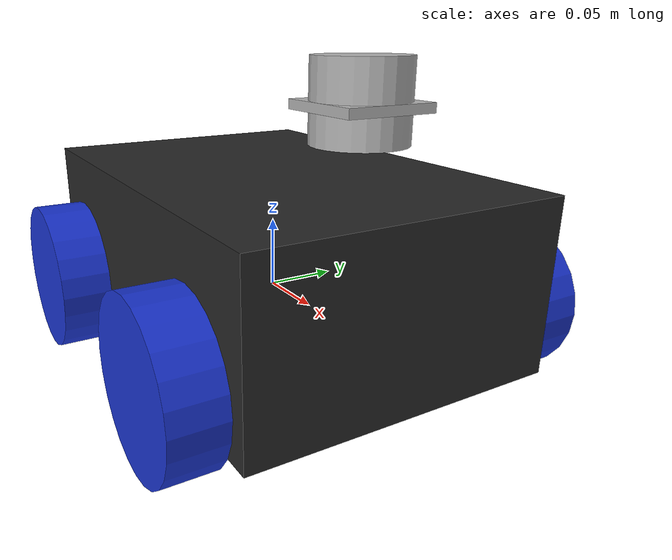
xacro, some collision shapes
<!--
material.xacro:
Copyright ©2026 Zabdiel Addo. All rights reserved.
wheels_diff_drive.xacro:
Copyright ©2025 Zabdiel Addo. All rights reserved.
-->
<?xml version="1.0"?>

<robot xmlns:xacro="http://www.ros.org/wiki/xacro" name="blazerbot">

    <xacro:property name="BLAZERBOT_PACKAGE_NAME" value="blazerbot_description" />
    <xacro:arg name="sim_mode" default="true" />

    <!-- Core robot -->
    <xacro:include filename="$(find ${BLAZERBOT_PACKAGE_NAME})/urdf/blazerbot_core.xacro" />

    <!-- Sim-only: gazebo control + lidar sensor -->
    <xacro:if value="$(arg sim_mode)">

        <xacro:include
            filename="$(find ${BLAZERBOT_PACKAGE_NAME})/urdf/control/gazebo_control.xacro" />
        <xacro:include filename="$(find ${BLAZERBOT_PACKAGE_NAME})/urdf/sensors/lidar.xacro" />

        <!-- Mount LiDAR on top-center of chassis -->
        <xacro:lidar parent_link="chassis">
            <origin xyz="0.10 0 ${chassis_height/2 + 0.05}" rpy="0 0 0" />
        </xacro:lidar>

    </xacro:if>

</robot>

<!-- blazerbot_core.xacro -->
<robot xmlns:xacro="http://www.ros.org/wiki/xacro">

    <xacro:property name="BLAZERBOT_PACKAGE_NAME" value="blazerbot_description" />

    <xacro:include filename="$(find ${BLAZERBOT_PACKAGE_NAME})/urdf/macros/material.xacro" />
    <xacro:include filename="$(find ${BLAZERBOT_PACKAGE_NAME})/urdf/macros/inertial.xacro" />
    <xacro:include filename="$(find ${BLAZERBOT_PACKAGE_NAME})/urdf/macros/wheels_diff_drive.xacro" />

    <!-- Specs -->
    <xacro:property name="chassis_length" value="0.322" />
    <xacro:property name="chassis_width" value="0.220" />
    <xacro:property name="chassis_height" value="0.12" />
    <xacro:property name="chassis_mass" value="4.8" />

    <xacro:property name="ground_clearance" value="0.024" />
    <xacro:property name="wheelbase" value="0.200" />
    <xacro:property name="track_width" value="0.175" />

    <xacro:property name="wheel_radius" value="0.055" />
    <xacro:property name="wheel_width" value="0.035" />
    <xacro:property name="wheel_mass" value="0.30" />

    <!-- base_link at wheel center plane -->
    <link name="base_link" />

    <!-- Chassis above base_link -->
    <xacro:property name="chassis_z_from_base"
        value="${ground_clearance + chassis_height/2 - wheel_radius}" />

    <joint name="chassis_joint" type="fixed">
        <parent link="base_link" />
        <child link="chassis" />
        <origin xyz="0 0 ${chassis_z_from_base}" rpy="0 0 0" />
    </joint>

    <link name="chassis">
        <visual name="chassis_visual">
            <origin xyz="0 0 0" rpy="0 0 0" />
            <geometry>
                <box size="${chassis_length} ${chassis_width} ${chassis_height}" />
            </geometry>
            <material name="chassis_dark" />
        </visual>

        <collision name="chassis_collision">
            <origin xyz="0 0 0" rpy="0 0 0" />
            <geometry>
                <box size="${chassis_length} ${chassis_width} ${chassis_height}" />
            </geometry>
        </collision>

        <xacro:box_inertial prefix="chassis"
            mass="${chassis_mass}"
            x="${chassis_length}" y="${chassis_width}" z="${chassis_height}">
            <origin xyz="0 0 0" rpy="0 0 0" />
        </xacro:box_inertial>
    </link>

    <gazebo reference="chassis">
        <material>Gazebo/Black</material>
    </gazebo>

    <!-- Wheels attached to base_link -->
    <xacro:diff_drive_wheels
        parent_link="base_link"
        wheel_radius="${wheel_radius}"
        wheel_width="${wheel_width}"
        wheel_mass="${wheel_mass}"
        wheelbase="${wheelbase}"
        track_width="${track_width}" />

</robot>

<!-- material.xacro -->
<robot xmlns:xacro="http://www.ros.org/wiki/xacro">

    <!-- Matte dark chassis -->
    <material name="chassis_dark">
        <color rgba="0.15 0.15 0.15 1" />
    </material>

    <!-- Metallic silver (wheel hubs, bolts) -->
    <material name="metal_silver">
        <color rgba="0.7 0.7 0.7 1" />
    </material>

    <!-- Rubber black (tires) -->
    <material name="rubber_black">
        <color rgba="0.05 0.05 0.05 1" />
    </material>

    <!-- LIMO blue accent -->
    <material name="limo_blue">
        <color rgba="0.1 0.2 0.8 1" />
    </material>

    <!-- Sensor housing (LiDAR top cap) -->
    <material name="sensor_black">
        <color rgba="0.1 0.1 0.1 1" />
    </material>

    <!-- Transparent / debug -->
    <material name="transparent">
        <color rgba="0 0 0 0" />
    </material>

</robot>

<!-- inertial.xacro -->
<robot xmlns:xacro="http://www.ros.org/wiki/xacro">

    <xacro:macro name="sphere_inertial" params="prefix mass radius *origin">
        <inertial name="${prefix}_inertial">
            <xacro:insert_block name="origin" />
            <mass value="${mass}" />
            <inertia ixx="${(2/5) * mass * (radius*radius)}" ixy="0.0" ixz="0.0"
                iyy="${(2/5) * mass * (radius*radius)}" iyz="0.0"
                izz="${(2/5) * mass * (radius*radius)}" />
        </inertial>
    </xacro:macro>

    <xacro:macro name="cylinder_inertial" params="prefix mass radius length *origin">
        <inertial name="${prefix}_inertial">
            <xacro:insert_block name="origin" />
            <mass value="${mass}" />
            <inertia ixx="${(1/12) * mass * (3*radius*radius + length*length)}" ixy="0.0" ixz="0.0"
                iyy="${(1/12) * mass * (3*radius*radius + length*length)}" iyz="0.0"
                izz="${(1/2) * mass * (radius*radius)}" />
        </inertial>
    </xacro:macro>

    <xacro:macro name="box_inertial" params="prefix mass x y z *origin">
        <inertial name="${prefix}_inertial">
            <xacro:insert_block name="origin" />
            <mass value="${mass}" />
            <inertia ixx="${(1/12) * mass * (y*y + z*z)}" ixy="0.0" ixz="0.0"
                iyy="${(1/12) * mass * (x*x + z*z)}" iyz="0.0" izz="${(1/12) * mass *(x*x + y*y)}" />
        </inertial>
    </xacro:macro>
</robot>

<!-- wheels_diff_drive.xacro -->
<robot xmlns:xacro="http://www.ros.org/wiki/xacro">

    <xacro:property name="BLAZERBOT_PACKAGE_NAME" value="blazerbot_description" />
    <xacro:include filename="$(find ${BLAZERBOT_PACKAGE_NAME})/urdf/macros/inertial.xacro" />

    <xacro:macro name="wheel_link" params="name radius width mass material_name">
        <link name="${name}">
            <visual>
                <origin xyz="0 0 0" rpy="1.5708 0 0" />
                <geometry>
                    <cylinder radius="${radius}" length="${width}" />
                </geometry>
                <material name="${material_name}" />
            </visual>
            <collision>
                <origin xyz="0 0 0" rpy="1.5708 0 0" />
                <geometry>
                    <cylinder radius="${radius}" length="${width}" />
                </geometry>
            </collision>
            <xacro:cylinder_inertial prefix="${name}" mass="${mass}" radius="${radius}"
                length="${width}">
                <origin xyz="0 0 0" rpy="0 0 0" />
            </xacro:cylinder_inertial>
        </link>

        <gazebo reference="${name}">
            <material>Gazebo/Black</material>
            <mu1>1.0</mu1>
            <mu2>1.0</mu2>
            <kp>1000000.0</kp>
            <kd>1.0</kd>
            <minDepth>0.001</minDepth>
        </gazebo>
    </xacro:macro>

    <xacro:macro name="diff_drive_wheels"
        params="parent_link wheel_radius wheel_width wheel_mass wheelbase track_width">

        <xacro:property name="wheel_clearance" value="0.025" />
        <xacro:property name="wheel_y" value="${track_width/2 + wheel_width/2 + wheel_clearance}" />

        <!-- Front Left -->
        <xacro:wheel_link
            name="front_left_wheel_link"
            radius="${wheel_radius}"
            width="${wheel_width}"
            mass="${wheel_mass}"
            material_name="limo_blue" />
        <joint name="front_left_wheel_joint" type="continuous">
            <parent link="${parent_link}" />
            <child link="front_left_wheel_link" />
            <origin xyz="${wheelbase/2} ${wheel_y} 0" rpy="0 0 0" />
            <axis xyz="0 1 0" />
        </joint>

        <!-- Front Right -->
        <xacro:wheel_link
            name="front_right_wheel_link"
            radius="${wheel_radius}"
            width="${wheel_width}"
            mass="${wheel_mass}"
            material_name="limo_blue" />
        <joint name="front_right_wheel_joint" type="continuous">
            <parent link="${parent_link}" />
            <child link="front_right_wheel_link" />
            <origin xyz="${wheelbase/2} -${wheel_y} 0" rpy="0 0 0" />
            <axis xyz="0 1 0" />
        </joint>

        <!-- Rear Left -->
        <xacro:wheel_link
            name="rear_left_wheel_link"
            radius="${wheel_radius}"
            width="${wheel_width}"
            mass="${wheel_mass}"
            material_name="limo_blue" />
        <joint name="rear_left_wheel_joint" type="continuous">
            <parent link="${parent_link}" />
            <child link="rear_left_wheel_link" />
            <origin xyz="-${wheelbase/2} ${wheel_y} 0" rpy="0 0 0" />
            <axis xyz="0 1 0" />
        </joint>

        <!-- Rear Right -->
        <xacro:wheel_link
            name="rear_right_wheel_link"
            radius="${wheel_radius}"
            width="${wheel_width}"
            mass="${wheel_mass}"
            material_name="limo_blue" /> <!--Using blue for the wheels-->
        <joint name="rear_right_wheel_joint" type="continuous">
            <parent link="${parent_link}" />
            <child link="rear_right_wheel_link" />
            <origin xyz="-${wheelbase/2} -${wheel_y} 0" rpy="0 0 0" />
            <axis xyz="0 1 0" />
        </joint>

    </xacro:macro>

</robot>

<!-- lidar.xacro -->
<robot xmlns:xacro="http://www.ros.org/wiki/xacro">

    <xacro:property name="PI" value="3.14159" />
    <xacro:property name="BLAZERBOT_PACKAGE_NAME" value="blazerbot_description" />
    <xacro:include filename="$(find ${BLAZERBOT_PACKAGE_NAME})/urdf/macros/inertial.xacro" />

    <!--
      Macro: lidar
      parent_link: link we mount lidar to "chassis"
    -->
    <xacro:macro name="lidar" params="parent_link *joint_pose">

        <!-- Approx physical size/mass -->
        <xacro:property name="lidar_length" value="0.0556" />
        <xacro:property name="lidar_width" value="0.0556" />
        <xacro:property name="lidar_height" value="0.0413" />
        <xacro:property name="lidar_mass" value="0.11" />
        <xacro:property name="lidar_mesh_scale" value="0.015" />

        <!-- LiDAR mesh orientation (radians) -->
        <xacro:property name="lidar_mesh_roll" value="0.0" />
        <xacro:property name="lidar_mesh_pitch" value="0.0" />
        <xacro:property name="lidar_mesh_yaw" value="1.5708" />

        <xacro:property name="lidar_mesh_x_offset" value="0.0" />
        <xacro:property name="lidar_mesh_y_offset" value="0.0" />
        <xacro:property name="lidar_mesh_z_offset" value="-0.015" />

        <!-- Mount/holder dimensions -->
        <xacro:property name="mount_size_x" value="0.06" />
        <xacro:property name="mount_size_y" value="0.06" />
        <xacro:property name="mount_thickness" value="0.006" />
        <xacro:property name="mount_mass" value="0.05" />
        <xacro:property name="lidar_sensor_origin" value="0.0298" />

        <!-- Mount link on parent -->
        <joint name="lidar_mount_joint" type="fixed">
            <parent link="${parent_link}" />
            <child link="lidar_mount_link" />
            <xacro:insert_block name="joint_pose" />
        </joint>

        <link name="lidar_mount_link">
            <visual name="lidar_mount_visual">
                <origin xyz="0 0 ${mount_thickness/2}" rpy="0 0 0" />
                <geometry>
                    <box size="${mount_size_x} ${mount_size_y} ${mount_thickness}" />
                </geometry>
                <material name="metal_silver" />
            </visual>

            <collision name="lidar_mount_collision">
                <origin xyz="0 0 ${mount_thickness/2}" rpy="0 0 0" />
                <geometry>
                    <box size="${mount_size_x} ${mount_size_y} ${mount_thickness}" />
                </geometry>
            </collision>

            <xacro:box_inertial
                prefix="lidar_mount"
                mass="${mount_mass}"
                x="${mount_size_x}"
                y="${mount_size_y}"
                z="${mount_thickness}">
                <origin xyz="0 0 ${mount_thickness/2}" rpy="0 0 0" />
            </xacro:box_inertial>
        </link>

        <!-- Laser link sits on mount -->
        <joint name="lidar_joint" type="fixed">
            <parent link="lidar_mount_link" />
            <child link="laser_link" />
            <origin xyz="0 0 ${mount_thickness}" rpy="0 0 0" />
        </joint>

        <!-- LiDAR housing link -->
        <link name="laser_link">
            <visual name="laser_visual">
                <origin xyz="${lidar_mesh_x_offset} ${lidar_mesh_y_offset} ${lidar_mesh_z_offset}"
                    rpy="${lidar_mesh_roll} ${lidar_mesh_pitch} ${lidar_mesh_yaw}" />
                <geometry>
                    <mesh filename="package://${BLAZERBOT_PACKAGE_NAME}/meshes/lidar/lidar.dae"
                        scale="${lidar_mesh_scale} ${lidar_mesh_scale} ${lidar_mesh_scale}" />
                </geometry>
            </visual>

            <collision name="laser_collision">
                <origin xyz="0 0 0" rpy="0 0 0" />
                <geometry>
                    <cylinder radius="0.03" length="0.05" />
                </geometry>
            </collision>

            <xacro:box_inertial
                prefix="laser"
                mass="${lidar_mass}"
                x="${lidar_length}"
                y="${lidar_width}"
                z="${lidar_height}">
                <origin xyz="0 0 ${lidar_height/2}" rpy="0 0 0" />
            </xacro:box_inertial>
        </link>

        <gazebo reference="laser_link">
            <sensor name="lidar_sensor" type="gpu_lidar">
                <pose>0 0 ${lidar_sensor_origin} 0 0 0</pose>
                <always_on>true</always_on>
                <visualize>true</visualize>
                <update_rate>10</update_rate>

                <lidar>
                    <scan>
                        <horizontal>
                            <samples>720</samples>
                            <resolution>1</resolution>
                            <min_angle>-${PI}</min_angle>
                            <max_angle>${PI}</max_angle>
                        </horizontal>
                    </scan>
                    <range>
                        <min>0.05</min>
                        <max>6.0</max>
                        <resolution>0.01</resolution>
                    </range>
                    <noise>
                        <type>gaussian</type>
                        <mean>0.0</mean>
                        <stddev>0.01</stddev>
                    </noise>
                </lidar>

                <topic>scan</topic>
                <gz_frame_id>laser_link</gz_frame_id>
            </sensor>
        </gazebo>

    </xacro:macro>

</robot>
